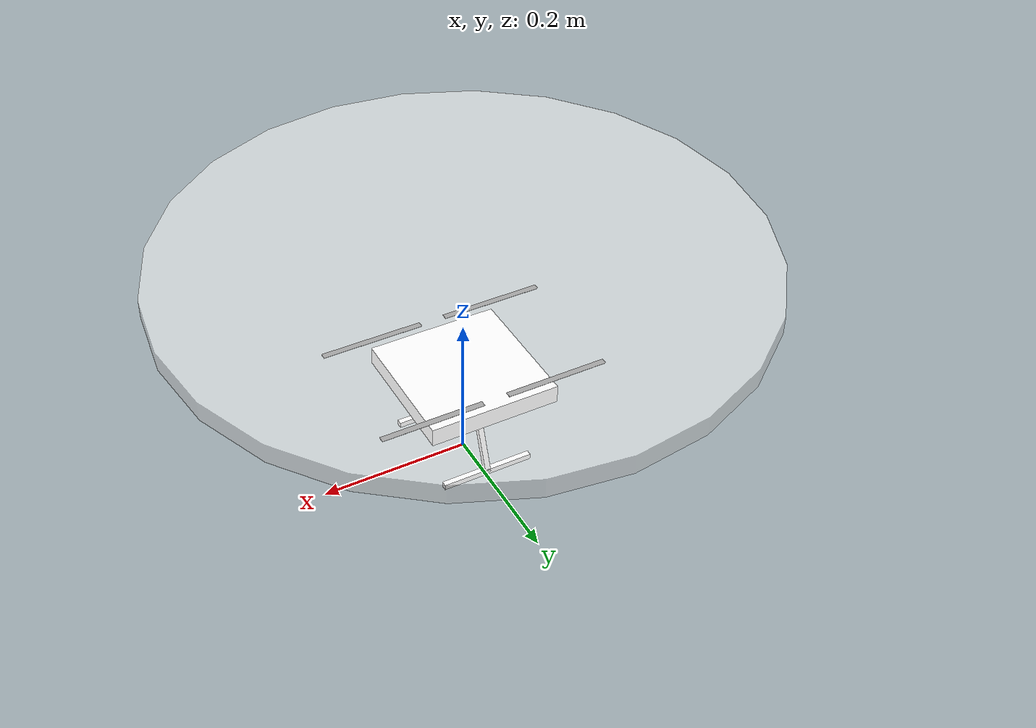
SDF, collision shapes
<?xml version="1.0" encoding="UTF-8"?>
<sdf version='1.9'>
  <model name='x500_spinning_guard'>
    <include merge='true'>
      <uri>model://x500_base</uri>
    </include>

    <link name="propeller_guard">
      <pose>0 0 0.3 0 0 0</pose> <!-- Adjust the height as needed -->
      <inertial>
        <mass>0.1</mass>
        <inertia>
          <ixx>0.001</ixx>
          <iyy>0.001</iyy>
          <izz>0.001</izz>
        </inertia>
      </inertial>
      <visual name="propeller_guard_visual">
        <geometry>
          <cylinder>
            <radius>0.39</radius> <!-- Increased by 30% from 0.3 -->
            <length>0.026</length> <!-- Increased by 30% from 0.02 -->
          </cylinder>
        </geometry>
        <material>
          <ambient>1 1 1 0.5</ambient> <!-- Changed to white with 50% transparency -->
          <diffuse>1 1 1 0.5</diffuse> <!-- Changed to white with 50% transparency -->
          <specular>1 1 1 0.5</specular> <!-- Changed to white with 50% transparency -->
        </material>
      </visual>
      <!-- Add some visual markers to the propeller guard -->
      <visual name="propeller_guard_marker_1">
        <pose>0.364 0 0.013 0 0 0</pose> <!-- Adjusted based on the new radius -->
        <geometry>
          <box>
            <size>0.026 0.13 0.013</size> <!-- Increased by 30% -->
          </box>
        </geometry>
        <material>
          <ambient>0 0 0 1</ambient>
          <diffuse>0 0 0 1</diffuse>
          <specular>0.5 0.5 0.5 1</specular>
        </material>
      </visual>
      <visual name="propeller_guard_marker_2">
        <pose>-0.364 0 0.013 0 0 0</pose> <!-- Adjusted based on the new radius -->
        <geometry>
          <box>
            <size>0.026 0.13 0.013</size> <!-- Increased by 30% -->
          </box>
        </geometry>
        <material>
          <ambient>0 0 0 1</ambient>
          <diffuse>0 0 0 1</diffuse>
          <specular>0.5 0.5 0.5 1</specular>
        </material>
      </visual>
      <collision name="propeller_guard_collision">
        <geometry>
          <cylinder>
            <radius>0.39</radius> <!-- Increased by 30% from 0.3 -->
            <length>0.026</length> <!-- Increased by 30% from 0.02 -->
          </cylinder>
        </geometry>
      </collision>
    </link>
    <joint name="propeller_guard_joint" type="revolute">
      <parent>base_link</parent>
      <child>propeller_guard</child>
      <axis>
        <xyz>0 0 1</xyz>
        <limit>
          <lower>-1e+16</lower>
          <upper>1e+16</upper>
        </limit>
        <dynamics>
          <damping>0.001</damping>
          <friction>0.001</friction>
        </dynamics>
      </axis>
    </joint>

    <plugin filename="gz-sim-multicopter-motor-model-system" name="gz::sim::systems::MulticopterMotorModel">
      <jointName>rotor_0_joint</jointName>
      <linkName>rotor_0</linkName>
      <turningDirection>ccw</turningDirection>
      <timeConstantUp>0.0125</timeConstantUp>
      <timeConstantDown>0.025</timeConstantDown>
      <maxRotVelocity>1000.0</maxRotVelocity>
      <motorConstant>8.54858e-06</motorConstant>
      <momentConstant>0.016</momentConstant>
      <commandSubTopic>command/motor_speed</commandSubTopic>
      <motorNumber>0</motorNumber>
      <rotorDragCoefficient>8.06428e-05</rotorDragCoefficient>
      <rollingMomentCoefficient>1e-06</rollingMomentCoefficient>
      <rotorVelocitySlowdownSim>10</rotorVelocitySlowdownSim>
      <motorType>velocity</motorType>
    </plugin>
    <plugin filename="gz-sim-multicopter-motor-model-system" name="gz::sim::systems::MulticopterMotorModel">
      <jointName>rotor_1_joint</jointName>
      <linkName>rotor_1</linkName>
      <turningDirection>ccw</turningDirection>
      <timeConstantUp>0.0125</timeConstantUp>
      <timeConstantDown>0.025</timeConstantDown>
      <maxRotVelocity>1000.0</maxRotVelocity>
      <motorConstant>8.54858e-06</motorConstant>
      <momentConstant>0.016</momentConstant>
      <commandSubTopic>command/motor_speed</commandSubTopic>
      <motorNumber>1</motorNumber>
      <rotorDragCoefficient>8.06428e-05</rotorDragCoefficient>
      <rollingMomentCoefficient>1e-06</rollingMomentCoefficient>
      <rotorVelocitySlowdownSim>10</rotorVelocitySlowdownSim>
      <motorType>velocity</motorType>
    </plugin>
    <plugin filename="gz-sim-multicopter-motor-model-system" name="gz::sim::systems::MulticopterMotorModel">
      <jointName>rotor_2_joint</jointName>
      <linkName>rotor_2</linkName>
      <turningDirection>cw</turningDirection>
      <timeConstantUp>0.0125</timeConstantUp>
      <timeConstantDown>0.025</timeConstantDown>
      <maxRotVelocity>1000.0</maxRotVelocity>
      <motorConstant>8.54858e-06</motorConstant>
      <momentConstant>0.016</momentConstant>
      <commandSubTopic>command/motor_speed</commandSubTopic>
      <motorNumber>2</motorNumber>
      <rotorDragCoefficient>8.06428e-05</rotorDragCoefficient>
      <rollingMomentCoefficient>1e-06</rollingMomentCoefficient>
      <rotorVelocitySlowdownSim>10</rotorVelocitySlowdownSim>
      <motorType>velocity</motorType>
    </plugin>
    <plugin filename="gz-sim-multicopter-motor-model-system" name="gz::sim::systems::MulticopterMotorModel">
      <jointName>rotor_3_joint</jointName>
      <linkName>rotor_3</linkName>
      <turningDirection>cw</turningDirection>
      <timeConstantUp>0.0125</timeConstantUp>
      <timeConstantDown>0.025</timeConstantDown>
      <maxRotVelocity>1000.0</maxRotVelocity>
      <motorConstant>8.54858e-06</motorConstant>
      <momentConstant>0.016</momentConstant>
      <commandSubTopic>command/motor_speed</commandSubTopic>
      <motorNumber>3</motorNumber>
      <rotorDragCoefficient>8.06428e-05</rotorDragCoefficient>
      <rollingMomentCoefficient>1e-06</rollingMomentCoefficient>
      <rotorVelocitySlowdownSim>10</rotorVelocitySlowdownSim>
      <motorType>velocity</motorType>
    </plugin>

    <!-- Add the Joint State Publisher system -->
    <plugin filename="gz-sim-joint-state-publisher-system" name="gz::sim::systems::JointStatePublisher">
        <joint_name>propeller_guard_joint</joint_name>
        <topic>/joint_states</topic>
    </plugin>

  </model>
</sdf>

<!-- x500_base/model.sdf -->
<sdf version='1.9'>
  <model name='x500_base'>
    <pose>0 0 0.12 0 0 0</pose>
    <self_collide>false</self_collide>
    <static>false</static>
    <link name="base_link">
      <inertial>
        <mass>1.0</mass>
        <inertia>
          <ixx>0.005416666666666667</ixx>
          <ixy>0</ixy>
          <ixz>0</ixz>
          <iyy>0.005416666666666667</iyy>
          <iyz>0</iyz>
          <izz>0.010000000000000002</izz>
        </inertia>
      </inertial>
      <gravity>true</gravity>
      <velocity_decay/>
      <visual name="base_link_visual">
        <pose>0 0 0.0125 0 0 3.141592654</pose>
        <geometry>
          <mesh>
            <scale>0.5 0.5 0.5</scale>
            <uri>model://x500_base/meshes/NXP-HGD-CF.dae</uri>
          </mesh>
        </geometry>
      </visual>
      <visual name="5010_motor_base_0">
        <pose>0.087 0.087 0.016 0 0 -0.45</pose>
        <geometry>
          <mesh>
            <scale>0.5 0.5 0.5</scale>
            <uri>model://x500_base/meshes/5010Base.dae</uri>
          </mesh>
        </geometry>
      </visual>
      <visual name="5010_motor_base_1">
        <pose>-0.087 0.087 0.016 0 0 -0.45</pose>
        <geometry>
          <mesh>
            <scale>0.5 0.5 0.5</scale>
            <uri>model://x500_base/meshes/5010Base.dae</uri>
          </mesh>
        </geometry>
      </visual>
      <visual name="5010_motor_base_2">
        <pose>0.087 -0.087 0.016 0 0 -0.45</pose>
        <geometry>
          <mesh>
            <scale>0.5 0.5 0.5</scale>
            <uri>model://x500_base/meshes/5010Base.dae</uri>
          </mesh>
        </geometry>
      </visual>
      <visual name="5010_motor_base_3">
        <pose>-0.087 -0.087 0.016 0 0 -0.45</pose>
        <geometry>
          <mesh>
            <scale>0.5 0.5 0.5</scale>
            <uri>model://x500_base/meshes/5010Base.dae</uri>
          </mesh>
        </geometry>
      </visual>
      <visual name="NXP_FMUK66_FRONT">
        <pose>0.0235 0.0005 0.0215 1 0 1.57</pose>
        <cast_shadows>false</cast_shadows>
        <geometry>
          <plane>
            <normal>0 0 1</normal>
            <size>0.0065 0.0035</size>
          </plane>
        </geometry>
        <material>
          <diffuse>1.0 1.0 1.0</diffuse>
          <specular>1.0 1.0 1.0</specular>
          <pbr>
            <metal>
              <albedo_map>model://x500_base/materials/textures/nxp.png</albedo_map>
            </metal>
          </pbr>
        </material>
      </visual>
      <visual name="NXP_FMUK66_TOP">
        <pose>-0.0115 0 0.02575 0 0 -1.57</pose>
        <cast_shadows>false</cast_shadows>
        <geometry>
          <plane>
            <normal>0 0 1</normal>
            <size>0.0065 0.0035</size>
          </plane>
        </geometry>
        <material>
          <diffuse>1.0 1.0 1.0</diffuse>
          <specular>1.0 1.0 1.0</specular>
          <pbr>
            <metal>
              <albedo_map>model://x500_base/materials/textures/nxp.png</albedo_map>
            </metal>
          </pbr>
        </material>
      </visual>
      <visual name="RDDRONE_FMUK66_TOP">
        <pose>-0.015 0 0.02575 0 0 -1.57</pose>
        <cast_shadows>false</cast_shadows>
        <geometry>
          <plane>
            <normal>0 0 1</normal>
            <size>0.016 0.0017</size>
          </plane>
        </geometry>
        <material>
          <diffuse>1.0 1.0 1.0</diffuse>
          <specular>1.0 1.0 1.0</specular>
          <pbr>
            <metal>
              <albedo_map>model://x500_base/materials/textures/rd.png</albedo_map>
            </metal>
          </pbr>
        </material>
      </visual>
      <collision name="base_link_collision_0">
        <pose>0 0 0.0035 0 0 0</pose>
        <geometry>
          <box>
            <size>0.17677669529663686 0.17677669529663686 0.025</size>
          </box>
        </geometry>
        <surface>
          <contact>
            <ode>
              <min_depth>0.001</min_depth>
              <max_vel>0</max_vel>
            </ode>
          </contact>
          <friction>
            <ode/>
          </friction>
        </surface>
      </collision>
      <collision name="base_link_collision_1">
        <pose>0 -0.049 -0.0615 -0.35 0 0</pose>
        <geometry>
          <box>
            <size>0.0075 0.0075 0.105</size>
          </box>
        </geometry>
        <surface>
          <contact>
            <ode>
              <min_depth>0.001</min_depth>
              <max_vel>0</max_vel>
            </ode>
          </contact>
          <friction>
            <ode/>
          </friction>
        </surface>
      </collision>
      <collision name="base_link_collision_2">
        <pose>0 0.049 -0.0615 0.35 0 0</pose>
        <geometry>
          <box>
            <size>0.0075 0.0075 0.105</size>
          </box>
        </geometry>
        <surface>
          <contact>
            <ode>
              <min_depth>0.001</min_depth>
              <max_vel>0</max_vel>
            </ode>
          </contact>
          <friction>
            <ode/>
          </friction>
        </surface>
      </collision>
      <collision name="base_link_collision_3">
        <pose>0 -0.066 -0.10975 0 0 0</pose>
        <geometry>
          <box>
            <size>0.125 0.0075 0.0075</size>
          </box>
        </geometry>
        <surface>
          <contact>
            <ode>
              <min_depth>0.001</min_depth>
              <max_vel>0</max_vel>
            </ode>
          </contact>
          <friction>
            <ode/>
          </friction>
        </surface>
      </collision>
      <collision name="base_link_collision_4">
        <pose>0 0.066 -0.10975 0 0 0</pose>
        <geometry>
          <box>
            <size>0.125 0.0075 0.0075</size>
          </box>
        </geometry>
        <surface>
          <contact>
            <ode>
              <min_depth>0.001</min_depth>
              <max_vel>0</max_vel>
            </ode>
          </contact>
          <friction>
            <ode/>
          </friction>
        </surface>
      </collision>
      <sensor name="air_pressure_sensor" type="air_pressure">
        <always_on>1</always_on>
        <update_rate>50</update_rate>
        <air_pressure>
          <pressure>
            <noise type="gaussian">
              <mean>0</mean>
              <stddev>0.01</stddev>
            </noise>
          </pressure>
        </air_pressure>
      </sensor>
      <sensor name="imu_sensor" type="imu">
        <always_on>1</always_on>
        <update_rate>250</update_rate>
        <imu>
          <angular_velocity>
            <x>
              <noise type="gaussian">
                <mean>0</mean>
                <stddev>0.00018665</stddev>
                <dynamic_bias_stddev>3.8785e-05</dynamic_bias_stddev>
                <dynamic_bias_correlation_time>1000</dynamic_bias_correlation_time>
              </noise>
            </x>
            <y>
              <noise type="gaussian">
                <mean>0</mean>
                <stddev>0.00018665</stddev>
                <dynamic_bias_stddev>3.8785e-05</dynamic_bias_stddev>
                <dynamic_bias_correlation_time>1000</dynamic_bias_correlation_time>
              </noise>
            </y>
            <z>
              <noise type="gaussian">
                <mean>0</mean>
                <stddev>0.00018665</stddev>
                <dynamic_bias_stddev>3.8785e-05</dynamic_bias_stddev>
                <dynamic_bias_correlation_time>1000</dynamic_bias_correlation_time>
              </noise>
            </z>
          </angular_velocity>
          <linear_acceleration>
            <x>
              <noise type="gaussian">
                <mean>0</mean>
                <stddev>0.00186</stddev>
                <dynamic_bias_stddev>0.006</dynamic_bias_stddev>
                <dynamic_bias_correlation_time>300</dynamic_bias_correlation_time>
              </noise>
            </x>
            <y>
              <noise type="gaussian">
                <mean>0</mean>
                <stddev>0.00186</stddev>
                <dynamic_bias_stddev>0.006</dynamic_bias_stddev>
                <dynamic_bias_correlation_time>300</dynamic_bias_correlation_time>
              </noise>
            </y>
            <z>
              <noise type="gaussian">
                <mean>0</mean>
                <stddev>0.00186</stddev>
                <dynamic_bias_stddev>0.006</dynamic_bias_stddev>
                <dynamic_bias_correlation_time>300</dynamic_bias_correlation_time>
              </noise>
            </z>
          </linear_acceleration>
        </imu>
      </sensor>
      <sensor name="navsat_sensor" type="navsat">
        <always_on>1</always_on>
        <update_rate>30</update_rate>
      </sensor>
    </link>
    <link name="rotor_0">
      <gravity>true</gravity>
      <self_collide>false</self_collide>
      <velocity_decay/>
      <pose>0.087 -0.087 0.03 0 0 0</pose>
      <inertial>
          <mass>0.008038461538461538</mass>
          <inertia>
            <ixx>9.616227620998331e-08</ixx>
            <iyy>6.528962922925001e-06</iyy>
            <izz>6.62464558678501e-06</izz>
          </inertia>
        </inertial>
      <visual name="rotor_0_visual">
        <pose>-0.011 -0.07319230769230769 -0.008 0 0 0</pose>
        <geometry>
          <mesh>
            <scale>0.4230769230769231 0.4230769230769231 0.4230769230769231</scale>
            <uri>model://x500_base/meshes/1345_prop_ccw.stl</uri>
          </mesh>
        </geometry>
        <material>
          <script>
            <name>Gazebo/DarkGrey</name>
            <uri>file://media/materials/scripts/gazebo.material</uri>
          </script>
        </material>
      </visual>
      <visual name="rotor_0_visual_motor_bell">
        <pose>0 0 -0.016 0 0 0</pose>
        <geometry>
          <mesh>
            <scale>0.5 0.5 0.5</scale>
            <uri>model://x500_base/meshes/5010Bell.dae</uri>
          </mesh>
        </geometry>
      </visual>
      <collision name="rotor_0_collision">
        <pose>0 0 0 0 0 0 </pose>
        <geometry>
          <box>
            <size>0.1396153846153846 0.008461538461538461 0.0004230769230769231</size>
          </box>
        </geometry>
        <surface>
          <contact>
            <ode>
              <min_depth>0.001</min_depth>
              <max_vel>0</max_vel>
            </ode>
          </contact>
          <friction>
            <ode/>
          </friction>
        </surface>
      </collision>
    </link>
    <joint name="rotor_0_joint" type="revolute">
      <parent>base_link</parent>
      <child>rotor_0</child>
      <axis>
        <xyz>0 0 1</xyz>
        <limit>
          <lower>-1e+16</lower>
          <upper>1e+16</upper>
        </limit>
        <dynamics>
          <spring_reference>0</spring_reference>
          <spring_stiffness>0</spring_stiffness>
        </dynamics>
      </axis>
    </joint>
    <link name="rotor_1">
      <gravity>true</gravity>
      <self_collide>false</self_collide>
      <velocity_decay/>
      <pose>-0.087 0.087 0.03 0 0 0</pose>
      <inertial>
          <mass>0.008038461538461538</mass>
          <inertia>
            <ixx>9.616227620998331e-08</ixx>
            <iyy>6.528962922925001e-06</iyy>
            <izz>6.62464558678501e-06</izz>
          </inertia>
        </inertial>
      <visual name="rotor_1_visual">
        <pose>-0.011 -0.07319230769230769 -0.008 0 0 0</pose>
        <geometry>
          <mesh>
            <scale>0.4230769230769231 0.4230769230769231 0.4230769230769231</scale>
            <uri>model://x500_base/meshes/1345_prop_ccw.stl</uri>
          </mesh>
        </geometry>
        <material>
          <script>
            <name>Gazebo/DarkGrey</name>
            <uri>file://media/materials/scripts/gazebo.material</uri>
          </script>
        </material>
      </visual>
      <visual name="rotor_1_visual_motor_top">
        <pose>0 0 -0.016 0 0 0</pose>
        <geometry>
          <mesh>
            <scale>0.5 0.5 0.5</scale>
            <uri>model://x500_base/meshes/5010Bell.dae</uri>
          </mesh>
        </geometry>
      </visual>
      <collision name="rotor_1_collision">
        <pose>0 0 0 0 0 0 </pose>
        <geometry>
          <box>
            <size>0.1396153846153846 0.008461538461538461 0.0004230769230769231</size>
          </box>
        </geometry>
        <surface>
          <contact>
            <ode>
              <min_depth>0.001</min_depth>
              <max_vel>0</max_vel>
            </ode>
          </contact>
          <friction>
            <ode/>
          </friction>
        </surface>
      </collision>
    </link>
    <joint name="rotor_1_joint" type="revolute">
      <parent>base_link</parent>
      <child>rotor_1</child>
      <axis>
        <xyz>0 0 1</xyz>
        <limit>
          <lower>-1e+16</lower>
          <upper>1e+16</upper>
        </limit>
        <dynamics>
          <spring_reference>0</spring_reference>
          <spring_stiffness>0</spring_stiffness>
        </dynamics>
      </axis>
    </joint>
    <link name="rotor_2">
      <gravity>true</gravity>
      <self_collide>false</self_collide>
      <velocity_decay/>
      <pose>0.087 0.087 0.03 0 0 0</pose>
      <inertial>
          <mass>0.008038461538461538</mass>
          <inertia>
            <ixx>9.616227620998331e-08</ixx>
            <iyy>6.528962922925001e-06</iyy>
            <izz>6.62464558678501e-06</izz>
          </inertia>
        </inertial>
      <visual name="rotor_2_visual">
        <pose>-0.011 -0.07319230769230769 -0.008 0 0 0</pose>
        <geometry>
          <mesh>
            <scale>0.4230769230769231 0.4230769230769231 0.4230769230769231</scale>
            <uri>model://x500_base/meshes/1345_prop_cw.stl</uri>
          </mesh>
        </geometry>
        <material>
          <script>
            <name>Gazebo/DarkGrey</name>
            <uri>file://media/materials/scripts/gazebo.material</uri>
          </script>
        </material>
      </visual>
      <visual name="rotor_2_visual_motor_top">
        <pose>0 0 -0.016 0 0 0</pose>
        <geometry>
          <mesh>
            <scale>0.5 0.5 0.5</scale>
            <uri>model://x500_base/meshes/5010Bell.dae</uri>
          </mesh>
        </geometry>
      </visual>
      <collision name="rotor_2_collision">
        <pose>0 0 0 0 0 0 </pose>
        <geometry>
          <box>
            <size>0.1396153846153846 0.008461538461538461 0.0004230769230769231</size>
          </box>
        </geometry>
        <surface>
          <contact>
            <ode>
              <min_depth>0.001</min_depth>
              <max_vel>0</max_vel>
            </ode>
          </contact>
          <friction>
            <ode/>
          </friction>
        </surface>
      </collision>
    </link>
    <joint name="rotor_2_joint" type="revolute">
      <parent>base_link</parent>
      <child>rotor_2</child>
      <axis>
        <xyz>0 0 1</xyz>
        <limit>
          <lower>-1e+16</lower>
          <upper>1e+16</upper>
        </limit>
        <dynamics>
          <spring_reference>0</spring_reference>
          <spring_stiffness>0</spring_stiffness>
        </dynamics>
      </axis>
    </joint>
    <link name="rotor_3">
      <gravity>true</gravity>
      <self_collide>false</self_collide>
      <velocity_decay/>
      <pose>-0.087 -0.087 0.03 0 0 0</pose>
      <inertial>
          <mass>0.008038461538461538</mass>
          <inertia>
            <ixx>9.616227620998331e-08</ixx>
            <iyy>6.528962922925001e-06</iyy>
            <izz>6.62464558678501e-06</izz>
          </inertia>
        </inertial>
      <visual name="rotor_3_visual">
        <pose>-0.011 -0.07319230769230769 -0.008 0 0 0</pose>
        <geometry>
          <mesh>
            <scale>0.4230769230769231 0.4230769230769231 0.4230769230769231</scale>
            <uri>model://x500_base/meshes/1345_prop_cw.stl</uri>
          </mesh>
        </geometry>
        <material>
          <script>
            <name>Gazebo/DarkGrey</name>
            <uri>file://media/materials/scripts/gazebo.material</uri>
          </script>
        </material>
      </visual>
      <visual name="rotor_3_visual_motor_top">
        <pose>0 0 -0.016 0 0 0</pose>
        <geometry>
          <mesh>
            <scale>0.5 0.5 0.5</scale>
            <uri>model://x500_base/meshes/5010Bell.dae</uri>
          </mesh>
        </geometry>
      </visual>
      <collision name="rotor_3_collision">
        <pose>0 0 0 0 0 0 </pose>
        <geometry>
          <box>
            <size>0.1396153846153846 0.008461538461538461 0.0004230769230769231</size>
          </box>
        </geometry>
        <surface>
          <contact>
            <ode>
              <min_depth>0.001</min_depth>
              <max_vel>0</max_vel>
            </ode>
          </contact>
          <friction>
            <ode/>
          </friction>
        </surface>
      </collision>
    </link>
    <joint name="rotor_3_joint" type="revolute">
      <parent>base_link</parent>
      <child>rotor_3</child>
      <axis>
        <xyz>0 0 1</xyz>
        <limit>
          <lower>-1e+16</lower>
          <upper>1e+16</upper>
        </limit>
        <dynamics>
          <spring_reference>0</spring_reference>
          <spring_stiffness>0</spring_stiffness>
        </dynamics>
      </axis>
    </joint>
  </model>
</sdf>
